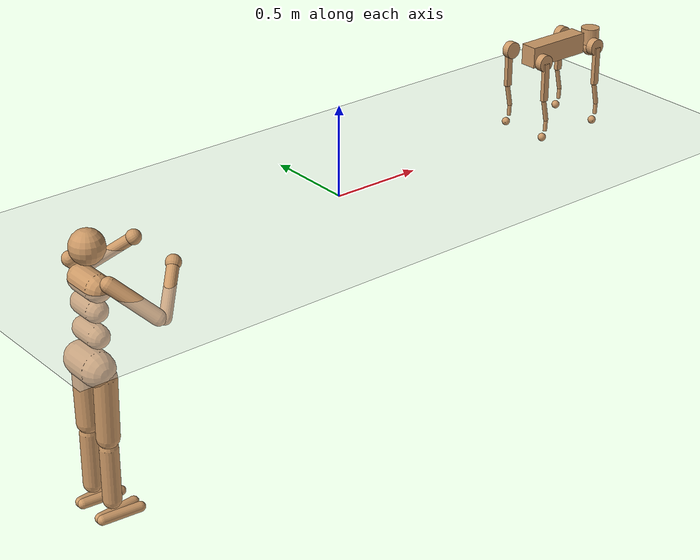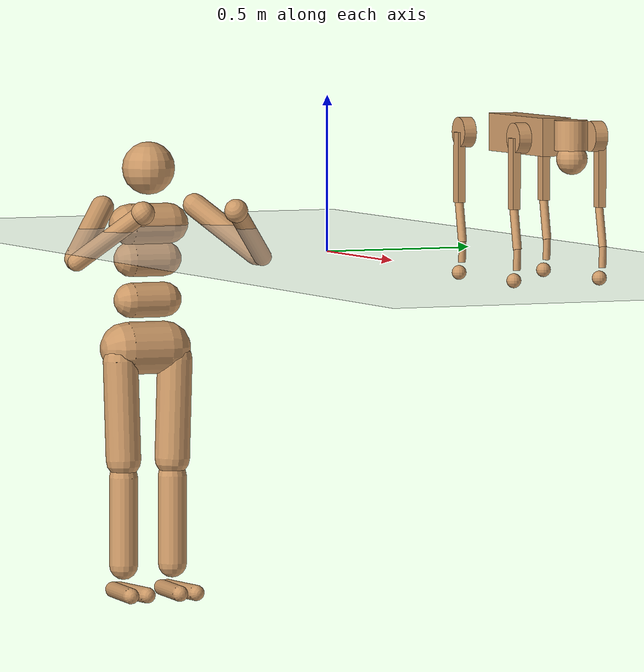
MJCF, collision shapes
<mujoco model="dog_follow_human">
  <!-- 全局仿真配置，统一时间步和重力 -->
  <option timestep="0.002" gravity="0 0 -9.81"/>
  <visual>
    <map fogstart="10" fogend="20" force="0.1" zfar="30"/>
    <rgba haze="0.15 0.25 0.35 1"/>
    <global offwidth="2560" offheight="1440" elevation="-20" azimuth="120"/>
  </visual>

  <!-- 全局默认参数，避免重复定义 -->
  <default>
    <geom conaffinity="0" condim="3" friction="1 0.1 0.1" rgba="0.8 0.6 0.4 1" mass="1"/>
    <joint armature="0.1" damping="1" limited="true"/>

    <!-- 人形机器人专属默认配置（继承全局默认并覆盖特有属性） -->
    <default class="human_body">
      <geom type="capsule" condim="1" friction=".7" solimp=".9 .99 .003" solref=".015 1" material="body" group="1"/>
      <default class="thigh">
        <geom size=".06"/>
      </default>
      <default class="shin">
        <geom fromto="0 0 0 0 0 -.3"  size=".049"/>
      </default>
      <default class="foot">
        <geom size=".027"/>
        <default class="foot1">
          <geom fromto="-.07 -.01 0 .14 -.03 0"/>
        </default>
        <default class="foot2">
          <geom fromto="-.07 .01 0 .14  .03 0"/>
        </default>
      </default>
      <default class="arm_upper">
        <geom size=".04"/>
      </default>
      <default class="arm_lower">
        <geom size=".031"/>
      </default>
      <default class="hand">
        <geom type="sphere" size=".04"/>
      </default>

      <joint type="hinge" damping=".2" stiffness="1" armature=".01" limited="true" solimplimit="0 .99 .01"/>
      <default class="joint_big">
        <joint damping="5" stiffness="10"/>
        <default class="hip_x">
          <joint range="-30 10"/>
        </default>
        <default class="hip_z">
          <joint range="-60 35"/>
        </default>
        <default class="hip_y">
          <joint axis="0 1 0" range="-150 20"/>
        </default>
        <default class="joint_big_stiff">
          <joint stiffness="20"/>
        </default>
      </default>
      <default class="knee">
        <joint pos="0 0 .02" axis="0 -1 0" range="-160 2"/>
      </default>
      <default class="ankle">
        <joint range="-50 50"/>
        <default class="ankle_y">
          <joint pos="0 0 .08" axis="0 1 0" stiffness="6"/>
        </default>
        <default class="ankle_x">
          <joint pos="0 0 .04" stiffness="3"/>
        </default>
      </default>
      <default class="shoulder">
        <joint range="-85 60"/>
      </default>
      <default class="elbow">
        <joint range="-100 50" stiffness="0"/>
      </default>
      <motor ctrlrange="-1 1" ctrllimited="true"/>
    </default>

    <!-- 机器狗专属默认配置（继承全局默认并覆盖特有属性） -->
    <default class="go2">
      <geom friction="0.6" margin="0.001" condim="1"/>
      <joint axis="0 1 0" damping="2" armature="0.01" frictionloss="0.2"/>
      <motor ctrlrange="-23.7 23.7"/>
      <default class="abduction">
        <joint axis="1 0 0" range="-1.0472 1.0472"/>
      </default>
      <default class="hip">
        <default class="front_hip">
          <joint range="-1.5708 3.4907"/>
        </default>
        <default class="back_hip">
          <joint range="-0.5236 4.5379"/>
        </default>
      </default>
      <default class="knee">
        <joint range="-2.7227 -0.83776"/>
        <motor ctrlrange="-45.43 45.43"/>
      </default>
      <default class="visual">
        <geom type="mesh" contype="0" conaffinity="0" group="2"/>
      </default>
      <default class="collision">
        <geom group="3"/>
        <default class="foot">
          <geom size="0.022" pos="-0.002 0 -0.213" priority="1" solimp="0.015 1 0.022" condim="6"
            friction="0.8 0.02 0.01"/>
        </default>
      </default>
    </default>
  </default>

  <!-- 资源定义（纹理、材质、模型网格） -->
  <asset>
    <!-- 人形机器人资源 -->
    <texture type="skybox" builtin="gradient" rgb1=".3 .5 .7" rgb2="0 0 0" width="32" height="512"/>
    <texture name="body" type="cube" builtin="flat" mark="cross" width="128" height="128" rgb1="0.8 0.6 0.4" rgb2="0.8 0.6 0.4" markrgb="1 1 1"/>
    <material name="body" texture="body" texuniform="true" rgba="0.8 0.6 .4 1"/>
    <texture name="grid" type="2d" builtin="checker" width="512" height="512" rgb1=".1 .2 .3" rgb2=".2 .3 .4"/>
    <material name="grid" texture="grid" texrepeat="1 1" texuniform="true" reflectance=".2"/>

    <!-- 机器狗资源 -->
    <material name="metal" rgba=".9 .95 .95 1"/>
    <material name="black" rgba="0 0 0 1"/>
    <material name="white" rgba="1 1 1 1"/>
    <material name="gray" rgba="0.671705 0.692426 0.774270 1"/>
    <mesh file="base_0.obj"/>
    <mesh file="base_1.obj"/>
    <mesh file="base_2.obj"/>
    <mesh file="base_3.obj"/>
    <mesh file="base_4.obj"/>
    <mesh file="hip_0.obj"/>
    <mesh file="hip_1.obj"/>
    <mesh file="thigh_0.obj"/>
    <mesh file="thigh_1.obj"/>
    <mesh file="thigh_mirror_0.obj"/>
    <mesh file="thigh_mirror_1.obj"/>
    <mesh file="calf_0.obj"/>
    <mesh file="calf_1.obj"/>
    <mesh file="calf_mirror_0.obj"/>
    <mesh file="calf_mirror_1.obj"/>
    <mesh file="foot.obj"/>
  </asset>

  <!-- 世界场景 -->
  <worldbody>
    <light cutoff="100" diffuse="1 1 1" dir="0 0 -1" pos="0 0 3"/>
    <geom name="floor" type="plane" size="10 10 0.1" rgba="0.9 0.9 0.9 1"/>

    <!-- 人形机器人模型（初始位置：x=-1.5，避免与机器狗重叠） -->
    <body name="humanoid" pos="-1.5 0 0" childclass="human_body">
      <camera name="back" pos="-3 0 1" xyaxes="0 -1 0 1 0 2" mode="trackcom"/>
      <camera name="side" pos="0 -3 1" xyaxes="1 0 0 0 1 2" mode="trackcom"/>
      <freejoint name="human_root"/>
      <geom name="torso" fromto="0 -.07 0 0 .07 0" size=".07"/>
      <geom name="waist_upper" fromto="-.01 -.06 -.12 -.01 .06 -.12" size=".06"/>
      <body name="head" pos="0 0 .19">
        <geom name="head" type="sphere" size=".09"/>
        <camera name="egocentric" pos=".09 0 0" xyaxes="0 -1 0 .1 0 1" fovy="80"/>
      </body>
      <body name="waist_lower" pos="-.01 0 -.26">
        <geom name="waist_lower" fromto="0 -.06 0 0 .06 0" size=".06"/>
        <joint name="abdomen_z" pos="0 0 .065" axis="0 0 1" range="-45 45" class="joint_big_stiff"/>
        <joint name="abdomen_y" pos="0 0 .065" axis="0 1 0" range="-75 30" class="joint_big"/>
        <body name="pelvis" pos="0 0 -.165">
          <joint name="abdomen_x" pos="0 0 .1" axis="1 0 0" range="-35 35" class="joint_big"/>
          <geom name="butt" fromto="-.02 -.07 0 -.02 .07 0" size=".09"/>
          <body name="thigh_right" pos="0 -.1 -.04">
            <joint name="hip_x_right" axis="1 0 0" class="hip_x"/>
            <joint name="hip_z_right" axis="0 0 1" class="hip_z"/>
            <joint name="hip_y_right" class="hip_y"/>
            <geom name="thigh_right" fromto="0 0 0 0 .01 -.34" class="thigh"/>
            <body name="shin_right" pos="0 .01 -.4">
              <joint name="knee_right" class="knee"/>
              <geom name="shin_right" class="shin"/>
              <body name="foot_right" pos="0 0 -.39">
                <joint name="ankle_y_right" class="ankle_y"/>
                <joint name="ankle_x_right" class="ankle_x" axis="1 0 .5"/>
                <geom name="foot1_right" class="foot1"/>
                <geom name="foot2_right" class="foot2"/>
              </body>
            </body>
          </body>
          <body name="thigh_left" pos="0 .1 -.04">
            <joint name="hip_x_left" axis="-1 0 0" class="hip_x"/>
            <joint name="hip_z_left" axis="0 0 -1" class="hip_z"/>
            <joint name="hip_y_left" class="hip_y"/>
            <geom name="thigh_left" fromto="0 0 0 0 -.01 -.34" class="thigh"/>
            <body name="shin_left" pos="0 -.01 -.4">
              <joint name="knee_left" class="knee"/>
              <geom name="shin_left" fromto="0 0 0 0 0 -.3" class="shin"/>
              <body name="foot_left" pos="0 0 -.39">
                <joint name="ankle_y_left" class="ankle_y"/>
                <joint name="ankle_x_left" class="ankle_x" axis="-1 0 -.5"/>
                <geom name="foot1_left" class="foot1"/>
                <geom name="foot2_left" class="foot2"/>
              </body>
            </body>
          </body>
        </body>
      </body>
      <body name="upper_arm_right" pos="0 -.17 .06">
        <joint name="shoulder1_right" axis="2 1 1"  class="shoulder"/>
        <joint name="shoulder2_right" axis="0 -1 1" class="shoulder"/>
        <geom name="upper_arm_right" fromto="0 0 0 .16 -.16 -.16" class="arm_upper"/>
        <body name="lower_arm_right" pos=".18 -.18 -.18">
          <joint name="elbow_right" axis="0 -1 1" class="elbow"/>
          <geom name="lower_arm_right" fromto=".01 .01 .01 .17 .17 .17" class="arm_lower"/>
          <body name="hand_right" pos=".18 .18 .18">
            <geom name="hand_right" zaxis="1 1 1" class="hand"/>
          </body>
        </body>
      </body>
      <body name="upper_arm_left" pos="0 .17 .06">
        <joint name="shoulder1_left" axis="-2 1 -1" class="shoulder"/>
        <joint name="shoulder2_left" axis="0 -1 -1"  class="shoulder"/>
        <geom name="upper_arm_left" fromto="0 0 0 .16 .16 -.16" class="arm_upper"/>
        <body name="lower_arm_left" pos=".18 .18 -.18">
          <joint name="elbow_left" axis="0 -1 -1" class="elbow"/>
          <geom name="lower_arm_left" fromto=".01 -.01 .01 .17 -.17 .17" class="arm_lower"/>
          <body name="hand_left" pos=".18 -.18 .18">
            <geom name="hand_left" zaxis="1 -1 1" class="hand"/>
          </body>
        </body>
      </body>
    </body>

    <!-- 机器狗模型（初始位置：x=1.5，与人形机器人错开） -->
    <body name="go2_dog" pos="1.5 0 0" childclass="go2">
      <body name="base" pos="0 0 0.445">
        <inertial pos="0.021112 0 -0.005366" quat="-0.000543471 0.713435 -0.00173769 0.700719" mass="6.921"
          diaginertia="0.107027 0.0980771 0.0244531"/>
        <freejoint/>
        <geom mesh="base_0" material="black" class="visual"/>
        <geom mesh="base_1" material="black" class="visual"/>
        <geom mesh="base_2" material="black" class="visual"/>
        <geom mesh="base_3" material="white" class="visual"/>
        <geom mesh="base_4" material="gray" class="visual"/>
        <geom size="0.1881 0.04675 0.057" type="box" class="collision"/>
        <geom size="0.05 0.045" pos="0.285 0 0.01" type="cylinder" class="collision"/>
        <geom size="0.047" pos="0.293 0 -0.06" class="collision"/>
        <site name="imu" pos="-0.02557 0 0.04232"/>
        <body name="FL_hip" pos="0.1934 0.0465 0">
          <inertial pos="-0.0054 0.00194 -0.000105" quat="0.497014 0.499245 0.505462 0.498237" mass="0.678"
            diaginertia="0.00088403 0.000596003 0.000479967"/>
          <joint name="FL_hip_joint" class="abduction"/>
          <geom mesh="hip_0" material="metal" class="visual"/>
          <geom mesh="hip_1" material="gray" class="visual"/>
          <geom size="0.046 0.02" pos="0 0.08 0" quat="1 1 0 0" type="cylinder" class="collision"/>
          <body name="FL_thigh" pos="0 0.0955 0">
            <inertial pos="-0.00374 -0.0223 -0.0327" quat="0.829533 0.0847635 -0.0200632 0.551623" mass="1.152"
              diaginertia="0.00594973 0.00584149 0.000878787"/>
            <joint name="FL_thigh_joint" class="front_hip"/>
            <geom mesh="thigh_0" material="metal" class="visual"/>
            <geom mesh="thigh_1" material="gray" class="visual"/>
            <geom size="0.1065 0.01225 0.017" pos="0 0 -0.1065" quat="0.707107 0 0.707107 0" type="box" class="collision"/>
            <body name="FL_calf" pos="0 0 -0.213">
              <inertial pos="0.00629595 -0.000622121 -0.141417" quat="0.710672 0.00154099 -0.00450087 0.703508"
                mass="0.241352" diaginertia="0.0014901 0.00146356 5.31397e-05"/>
              <joint name="FL_calf_joint" class="knee"/>
              <geom mesh="calf_0" material="gray" class="visual"/>
              <geom mesh="calf_1" material="black" class="visual"/>
              <geom size="0.012 0.06" pos="0.008 0 -0.06" quat="0.994493 0 -0.104807 0" type="cylinder" class="collision"/>
              <geom size="0.011 0.0325" pos="0.02 0 -0.148" quat="0.999688 0 0.0249974 0" type="cylinder" class="collision"/>
              <geom pos="0 0 -0.213" mesh="foot" class="visual" material="black"/>
              <geom name="FL" class="foot"/>
            </body>
          </body>
        </body>
        <body name="FR_hip" pos="0.1934 -0.0465 0">
          <inertial pos="-0.0054 -0.00194 -0.000105" quat="0.498237 0.505462 0.499245 0.497014" mass="0.678"
            diaginertia="0.00088403 0.000596003 0.000479967"/>
          <joint name="FR_hip_joint" class="abduction"/>
          <geom mesh="hip_0" material="metal" class="visual" quat="4.63268e-05 1 0 0"/>
          <geom mesh="hip_1" material="gray" class="visual" quat="4.63268e-05 1 0 0"/>
          <geom size="0.046 0.02" pos="0 -0.08 0" quat="0.707107 0.707107 0 0" type="cylinder" class="collision"/>
          <body name="FR_thigh" pos="0 -0.0955 0">
            <inertial pos="-0.00374 0.0223 -0.0327" quat="0.551623 -0.0200632 0.0847635 0.829533" mass="1.152"
              diaginertia="0.00594973 0.00584149 0.000878787"/>
            <joint name="FR_thigh_joint" class="front_hip"/>
            <geom mesh="thigh_mirror_0" material="metal" class="visual"/>
            <geom mesh="thigh_mirror_1" material="gray" class="visual"/>
            <geom size="0.1065 0.01225 0.017" pos="0 0 -0.1065" quat="0.707107 0 0.707107 0" type="box" class="collision"/>
            <body name="FR_calf" pos="0 0 -0.213">
              <inertial pos="0.00629595 0.000622121 -0.141417" quat="0.703508 -0.00450087 0.00154099 0.710672"
                mass="0.241352" diaginertia="0.0014901 0.00146356 5.31397e-05"/>
              <joint name="FR_calf_joint" class="knee"/>
              <geom mesh="calf_mirror_0" material="gray" class="visual"/>
              <geom mesh="calf_mirror_1" material="black" class="visual"/>
              <geom size="0.013 0.06" pos="0.01 0 -0.06" quat="0.995004 0 -0.0998334 0" type="cylinder" class="collision"/>
              <geom size="0.011 0.0325" pos="0.02 0 -0.148" quat="0.999688 0 0.0249974 0" type="cylinder" class="collision"/>
              <geom pos="0 0 -0.213" mesh="foot" class="visual" material="black"/>
              <geom name="FR" class="foot"/>
            </body>
          </body>
        </body>
        <body name="RL_hip" pos="-0.1934 0.0465 0">
          <inertial pos="0.0054 0.00194 -0.000105" quat="0.505462 0.498237 0.497014 0.499245" mass="0.678"
            diaginertia="0.00088403 0.000596003 0.000479967"/>
          <joint name="RL_hip_joint" class="abduction"/>
          <geom mesh="hip_0" material="metal" class="visual" quat="4.63268e-05 0 1 0"/>
          <geom mesh="hip_1" material="gray" class="visual" quat="4.63268e-05 0 1 0"/>
          <geom size="0.046 0.02" pos="0 0.08 0" quat="0.707107 0.707107 0 0" type="cylinder" class="collision"/>
          <body name="RL_thigh" pos="0 0.0955 0">
            <inertial pos="-0.00374 -0.0223 -0.0327" quat="0.829533 0.0847635 -0.0200632 0.551623" mass="1.152"
              diaginertia="0.00594973 0.00584149 0.000878787"/>
            <joint name="RL_thigh_joint" class="back_hip"/>
            <geom mesh="thigh_0" material="metal" class="visual"/>
            <geom mesh="thigh_1" material="gray" class="visual"/>
            <geom size="0.1065 0.01225 0.017" pos="0 0 -0.1065" quat="0.707107 0 0.707107 0" type="box" class="collision"/>
            <body name="RL_calf" pos="0 0 -0.213">
              <inertial pos="0.00629595 -0.000622121 -0.141417" quat="0.710672 0.00154099 -0.00450087 0.703508"
                mass="0.241352" diaginertia="0.0014901 0.00146356 5.31397e-05"/>
              <joint name="RL_calf_joint" class="knee"/>
              <geom mesh="calf_0" material="gray" class="visual"/>
              <geom mesh="calf_1" material="black" class="visual"/>
              <geom size="0.013 0.06" pos="0.01 0 -0.06" quat="0.995004 0 -0.0998334 0" type="cylinder" class="collision"/>
              <geom size="0.011 0.0325" pos="0.02 0 -0.148" quat="0.999688 0 0.0249974 0" type="cylinder" class="collision"/>
              <geom pos="0 0 -0.213" mesh="foot" class="visual" material="black"/>
              <geom name="RL" class="foot"/>
            </body>
          </body>
        </body>
        <body name="RR_hip" pos="-0.1934 -0.0465 0">
          <inertial pos="0.0054 -0.00194 -0.000105" quat="0.499245 0.497014 0.498237 0.505462" mass="0.678"
            diaginertia="0.00088403 0.000596003 0.000479967"/>
          <joint name="RR_hip_joint" class="abduction"/>
          <geom mesh="hip_0" material="metal" class="visual" quat="2.14617e-09 4.63268e-05 4.63268e-05 -1"/>
          <geom mesh="hip_1" material="gray" class="visual" quat="2.14617e-09 4.63268e-05 4.63268e-05 -1"/>
          <geom size="0.046 0.02" pos="0 -0.08 0" quat="0.707107 0.707107 0 0" type="cylinder" class="collision"/>
          <body name="RR_thigh" pos="0 -0.0955 0">
            <inertial pos="-0.00374 0.0223 -0.0327" quat="0.551623 -0.0200632 0.0847635 0.829533" mass="1.152"
              diaginertia="0.00594973 0.00584149 0.000878787"/>
            <joint name="RR_thigh_joint" class="back_hip"/>
            <geom mesh="thigh_mirror_0" material="metal" class="visual"/>
            <geom mesh="thigh_mirror_1" material="gray" class="visual"/>
            <geom size="0.1065 0.01225 0.017" pos="0 0 -0.1065" quat="0.707107 0 0.707107 0" type="box" class="collision"/>
            <body name="RR_calf" pos="0 0 -0.213">
              <inertial pos="0.00629595 0.000622121 -0.141417" quat="0.703508 -0.00450087 0.00154099 0.710672"
                mass="0.241352" diaginertia="0.0014901 0.00146356 5.31397e-05"/>
              <joint name="RR_calf_joint" class="knee"/>
              <geom mesh="calf_mirror_0" material="gray" class="visual"/>
              <geom mesh="calf_mirror_1" material="black" class="visual"/>
              <geom size="0.013 0.06" pos="0.01 0 -0.06" quat="0.995004 0 -0.0998334 0" type="cylinder" class="collision"/>
              <geom size="0.011 0.0325" pos="0.02 0 -0.148" quat="0.999688 0 0.0249974 0" type="cylinder" class="collision"/>
              <geom pos="0 0 -0.213" mesh="foot" class="visual" material="black"/>
              <geom name="RR" class="foot"/>
            </body>
          </body>
        </body>
      </body>
    </body>
  </worldbody>

  <!-- 人形机器人接触排除配置 -->
  <contact>
    <exclude body1="waist_lower" body2="thigh_right"/>
    <exclude body1="waist_lower" body2="thigh_left"/>
  </contact>

  <!-- 人形机器人肌腱配置 -->
  <tendon>
    <fixed name="hamstring_right" limited="true" range="-0.3 2">
      <joint joint="hip_y_right" coef=".5"/>
      <joint joint="knee_right" coef="-.5"/>
    </fixed>
    <fixed name="hamstring_left" limited="true" range="-0.3 2">
      <joint joint="hip_y_left" coef=".5"/>
      <joint joint="knee_left" coef="-.5"/>
    </fixed>
  </tendon>

  <!-- 执行器配置（整合人形和机器狗） -->
  <actuator>
    <!-- 人形机器人执行器 -->
    <motor name="human_abdomen_z"       gear="40"  joint="abdomen_z"/>
    <motor name="human_abdomen_y"       gear="40"  joint="abdomen_y"/>
    <motor name="human_abdomen_x"       gear="40"  joint="abdomen_x"/>
    <motor name="human_hip_x_right"     gear="40"  joint="hip_x_right"/>
    <motor name="human_hip_z_right"     gear="40"  joint="hip_z_right"/>
    <motor name="human_hip_y_right"     gear="120" joint="hip_y_right"/>
    <motor name="human_knee_right"      gear="80"  joint="knee_right"/>
    <motor name="human_ankle_y_right"   gear="20"  joint="ankle_y_right"/>
    <motor name="human_ankle_x_right"   gear="20"  joint="ankle_x_right"/>
    <motor name="human_hip_x_left"      gear="40"  joint="hip_x_left"/>
    <motor name="human_hip_z_left"      gear="40"  joint="hip_z_left"/>
    <motor name="human_hip_y_left"      gear="120" joint="hip_y_left"/>
    <motor name="human_knee_left"       gear="80"  joint="knee_left"/>
    <motor name="human_ankle_y_left"    gear="20"  joint="ankle_y_left"/>
    <motor name="human_ankle_x_left"    gear="20"  joint="ankle_x_left"/>
    <motor name="human_shoulder1_right" gear="20"  joint="shoulder1_right"/>
    <motor name="human_shoulder2_right" gear="20"  joint="shoulder2_right"/>
    <motor name="human_elbow_right"     gear="40"  joint="elbow_right"/>
    <motor name="human_shoulder1_left"  gear="20"  joint="shoulder1_left"/>
    <motor name="human_shoulder2_left"  gear="20"  joint="shoulder2_left"/>
    <motor name="human_elbow_left"      gear="40"  joint="elbow_left"/>

    <!-- 机器狗执行器 -->
    <motor class="abduction" name="dog_FL_hip" joint="FL_hip_joint"/>
    <motor class="hip" name="dog_FL_thigh" joint="FL_thigh_joint"/>
    <motor class="knee" name="dog_FL_calf" joint="FL_calf_joint"/>
    <motor class="abduction" name="dog_FR_hip" joint="FR_hip_joint"/>
    <motor class="hip" name="dog_FR_thigh" joint="FR_thigh_joint"/>
    <motor class="knee" name="dog_FR_calf" joint="FR_calf_joint"/>
    <motor class="abduction" name="dog_RL_hip" joint="RL_hip_joint"/>
    <motor class="hip" name="dog_RL_thigh" joint="RL_thigh_joint"/>
    <motor class="knee" name="dog_RL_calf" joint="RL_calf_joint"/>
    <motor class="abduction" name="dog_RR_hip" joint="RR_hip_joint"/>
    <motor class="hip" name="dog_RR_thigh" joint="RR_thigh_joint"/>
    <motor class="knee" name="dog_RR_calf" joint="RR_calf_joint"/>
  </actuator>

  <!-- 关键帧配置（保留原模型关键帧，区分人形和机器狗） -->
  <keyframe>
    <!-- 人形机器人关键帧 -->
    <key name="human_squat"
         qpos="0 0 0.596
               0.988015 0 0.154359 0
               0 0.4 0
               -0.25 -0.5 -2.5 -2.65 -0.8 0.56
               -0.25 -0.5 -2.5 -2.65 -0.8 0.56
               0 0 0 0 0 0"/>
    <key name="human_stand_on_left_leg"
         qpos="0 0 1.21948
               0.971588 -0.179973 0.135318 -0.0729076
               -0.0516 -0.202 0.23
               -0.24 -0.007 -0.34 -1.76 -0.466 -0.0415
               -0.08 -0.01 -0.37 -0.685 -0.35 -0.09
               0.109 -0.067 -0.7 -0.05 0.12 0.16"/>
    <key name="human_prone"
         qpos="0.4 0 0.0757706
               0.7325 0 0.680767 0
               0 0.0729 0
               0.0077 0.0019 -0.026 -0.351 -0.27 0
               0.0077 0.0019 -0.026 -0.351 -0.27 0
               0.56 -0.62 -1.752
               0.56 -0.62 -1.752"/>
    <key name="human_supine"
         qpos="-0.4 0 0.08122
               0.722788 0 -0.69107 0
               0 -0.25 0
               0.0182 0.0142 0.3 0.042 -0.44 -0.02
               0.0182 0.0142 0.3 0.042 -0.44 -0.02
               0.186 -0.73 -1.73
               0.186 -0.73 -1.73"/>

    <!-- 机器狗关键帧 -->
    <key name="dog_home" qpos="0 0 0.27 1 0 0 0 0 0.9 -1.8 0 0.9 -1.8 0 0.9 -1.8 0 0.9 -1.8"
      ctrl="0 0.9 -1.8 0 0.9 -1.8 0 0.9 -1.8 0 0.9 -1.8"/>
  </keyframe>

  <!-- 传感器配置（模板中引用了传感器但原模型无定义，预留空节点） -->
  <sensor>
    <!-- 人形机器人传感器（预留） -->

    <!-- 机器狗传感器（预留，仅保留原模型IMU位点） -->
    <site name="dog_imu" pos="-0.02557 0 0.04232"/>
  </sensor>
</mujoco>
